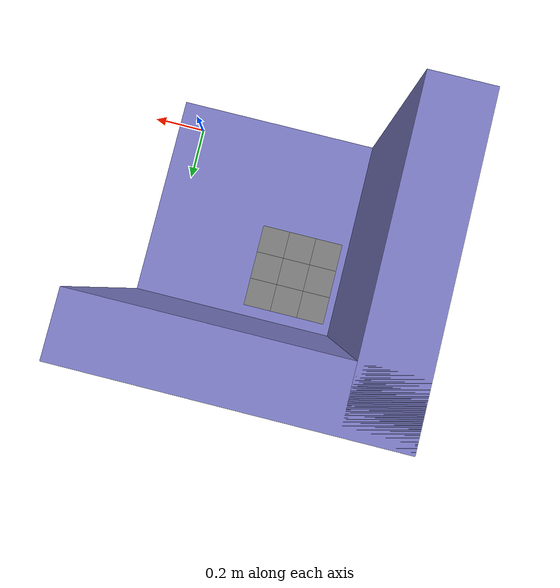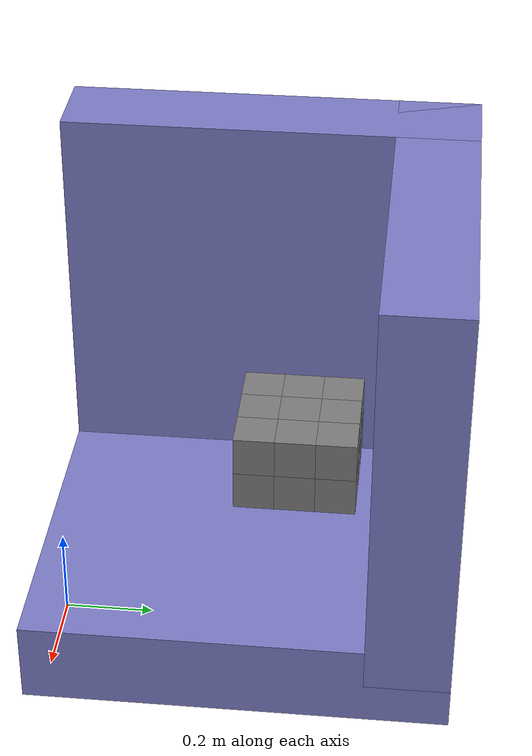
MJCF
<mujoco>
  <option gravity="-4 4 -10">
    <flag multiccd="enable"/>
  </option>

  <visual>
    <quality shadowsize="8192"/>
    <scale forcewidth="0.01" contactwidth="0.05" contactheight="0.05"/>
    <map force="0.1"/>
  </visual>

  <size memory="100M"/>

  <asset>
    <mesh name="box" vertex="-1 -1 -1 1 -1 -1 1 1 -1 1 1 1 1 -1 1 -1 1 -1 -1 1 1 -1 -1 1"
          scale=".05 .05 .05"/>
  </asset>

  <default>
    <geom friction="0.4"/>
    <default class="mesh_box">
      <geom type="mesh" mesh="box"/>
    </default>
    <default class="primitive_box">
      <geom type="box" size=".05 .05 .05" friction=".1"/>
    </default>
  </default>

  <worldbody>
    <light pos="1 -1 1" dir="-1 1 -1"/>
    <geom type="box" size=".5 .5 .1" pos="-.4 .4 -.1" rgba=".5 .5 .8 1"/>
    <geom type="box" size=".5 .1 .5" pos="-.4 .8 .4" rgba=".5 .5 .8 1"/>
    <geom type="box" size=".1 .5 .5" pos="-.8 .4 .4" rgba=".5 .5 .8 1"/>
    <body pos="-.4 .4 .1">
      <freejoint/>
      <geom class="mesh_box"/>
    </body>
    <body pos="-.5 .4 .1">
      <freejoint/>
      <geom class="mesh_box"/>
    </body>
    <body pos="-.6 .4 .1">
      <freejoint/>
      <geom class="mesh_box"/>
    </body>
    <body pos="-.4 .5 .1">
      <freejoint/>
      <geom class="mesh_box"/>
    </body>
    <body pos="-.5 .5 .1">
      <freejoint/>
      <geom class="mesh_box"/>
    </body>
    <body pos="-.6 .5 .1">
      <freejoint/>
      <geom class="mesh_box"/>
    </body>
    <body pos="-.4 .6 .1">
      <freejoint/>
      <geom class="mesh_box"/>
    </body>
    <body pos="-.5 .6 .1">
      <freejoint/>
      <geom class="mesh_box"/>
    </body>
    <body pos="-.6 .6 .1">
      <freejoint/>
      <geom class="mesh_box"/>
    </body>

    <body pos="-.4 .4 .2">
      <freejoint/>
      <geom class="mesh_box"/>
    </body>
    <body pos="-.5 .4 .2">
      <freejoint/>
      <geom class="mesh_box"/>
    </body>
    <body pos="-.6 .4 .2">
      <freejoint/>
      <geom class="mesh_box"/>
    </body>
    <body pos="-.4 .5 .2">
      <freejoint/>
      <geom class="mesh_box"/>
    </body>
    <body pos="-.5 .5 .2">
      <freejoint/>
      <geom class="mesh_box"/>
    </body>
    <body pos="-.6 .5 .2">
      <freejoint/>
      <geom class="mesh_box"/>
    </body>
    <body pos="-.4 .6 .2">
      <freejoint/>
      <geom class="mesh_box"/>
    </body>
    <body pos="-.5 .6 .2">
      <freejoint/>
      <geom class="mesh_box"/>
    </body>
    <body pos="-.6 .6 .2">
      <freejoint/>
      <geom class="mesh_box"/>
    </body>
  </worldbody>
</mujoco>
